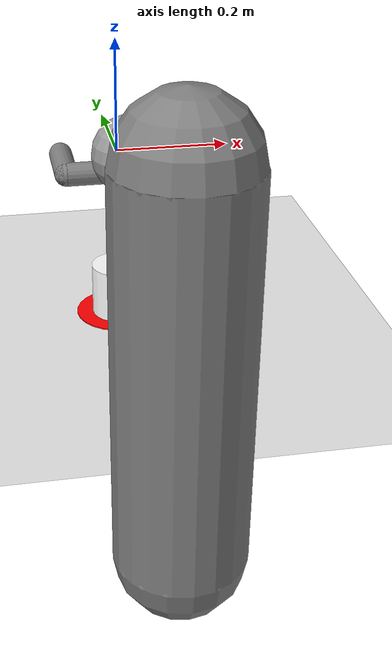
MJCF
<mujoco model="arm3d">
  <compiler inertiafromgeom="true" angle="radian" coordinate="local"/>
  <option timestep="0.01" gravity="0 0 0" iterations="20" integrator="Euler" />

  <default>
    <joint armature='0.04' damping="1" limited="true"/>
    <geom friction=".8 .1 .1" density="300" margin="0.002" condim="1" contype="0" conaffinity="0"/>
  </default>

  <worldbody>
    <light diffuse=".5 .5 .5" pos="0 0 3" dir="0 0 -1"/>
    <geom name="table" type="plane" pos="0 0.5 -0.325" size="1 1 0.1" contype="1" conaffinity="1"/>

    <body name="r_shoulder_pan_link" pos="0 -0.6 0">
      <geom name="e1" type="sphere" rgba="0.6 0.6 0.6 1" pos="-0.06 0.05 0.2" size="0.05" />
      <geom name="e2" type="sphere" rgba="0.6 0.6 0.6 1" pos=" 0.06 0.05 0.2" size="0.05" />
      <geom name="e1p" type="sphere" rgba="0.1 0.1 0.1 1" pos="-0.06 0.09 0.2" size="0.03" />
      <geom name="e2p" type="sphere" rgba="0.1 0.1 0.1 1" pos=" 0.06 0.09 0.2" size="0.03" />
      <geom name="sp" type="capsule" fromto="0 0 -0.4 0 0 0.2" size="0.1" />
    </body>

    <!-- Floating end effector -->
    <body name="r_wrist_roll_link" pos="0 0 0">
      <joint name="ee_x" type="slide" pos="0.1 0 0" limited="true" axis="1 0 0" damping="0.1" range="-0.5 0.5"/>
      <joint name="ee_y" type="slide" pos="0.1 0 0" limited="true" axis="0 1 0" damping="0.1" range="-0.5 0.5"/>
      <joint name="ee_z" type="slide" pos="0.1 0 0" limited="true" axis="0 0 1" damping="0.1" range="-0.3 0.0"/>
      <joint name="ee_wz" type="hinge" pos="0 0 0" limited="true" axis="0 0 1" damping="0.1" range="-1.7 1.7"/>
      <body name="tips_arm" pos="0 0 0">
        <geom name="tip_arml" type="sphere" pos="-0.1 0 0." size="0.01" />
        <geom name="tip_armr" type="sphere" pos=" 0.1 0 0." size="0.01" />
      </body>
      <geom type="capsule" fromto="-0.1 -0.1 0  0.1 -0.1 0" size="0.02" contype="1" conaffinity="1" />
      <geom type="capsule" fromto="-0.1  0   0 -0.1 -0.1 0" size="0.02" contype="1" conaffinity="1" />
      <geom type="capsule" fromto=" 0.1  0   0  0.1 -0.1 0." size="0.02" contype="1" conaffinity="1" />
    </body>

    <body name="object" pos="0.0 0.0 -0.275" >
      <!--geom rgba="0.5 0.5 1 1" type="sphere" size="0.06 0.06" density="0.00001" contype="1" conaffinity="0"/-->
      <geom rgba="0 0 0 0" type="sphere" size="0.05 0.05" density="0.00001" conaffinity="0"/>
      <geom rgba="1 1 1 1" type="cylinder" size="0.05 0.05 0.05" density="0.00001" contype="1" conaffinity="0"/>
      <joint name="obj_slidey" type="slide" pos="0 0 0" axis="0 1 0" range="-10.3213 10.3" damping="0.5"/>
      <joint name="obj_slidex" type="slide" pos="0 0 0" axis="1 0 0" range="-10.3213 10.3" damping="0.5"/>
    </body>

    <body name="goal" pos="0.0 0.0 -0.3230">
      <geom rgba="1 0 0 1" type="cylinder" size="0.08 0.001 0.1" density='0.00001' contype="0" conaffinity="0"/>
      <joint name="goal_slidey" type="slide" pos="0 0 0" axis="0 1 0" range="-10.3213 10.3" damping="0.5"/>
      <joint name="goal_slidex" type="slide" pos="0 0 0" axis="1 0 0" range="-10.3213 10.3" damping="0.5"/>
    </body>
  </worldbody>

  <actuator>
    <velocity joint="ee_x" ctrlrange="-2.0 2.0" ctrllimited="true"/>
    <velocity joint="ee_y" ctrlrange="-2.0 2.0" ctrllimited="true"/>
    <velocity joint="ee_z" ctrlrange="-2.0 2.0" ctrllimited="true"/>
    <velocity joint="ee_wz" ctrlrange="-2.0 2.0" ctrllimited="true"/>
  </actuator>
</mujoco>
